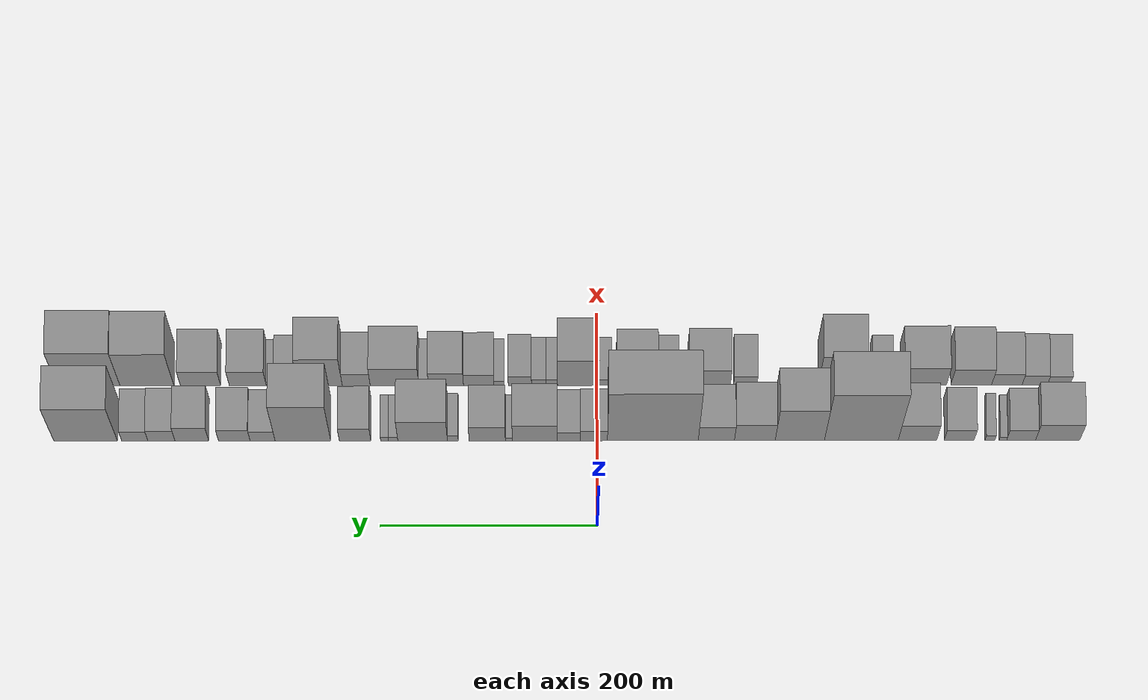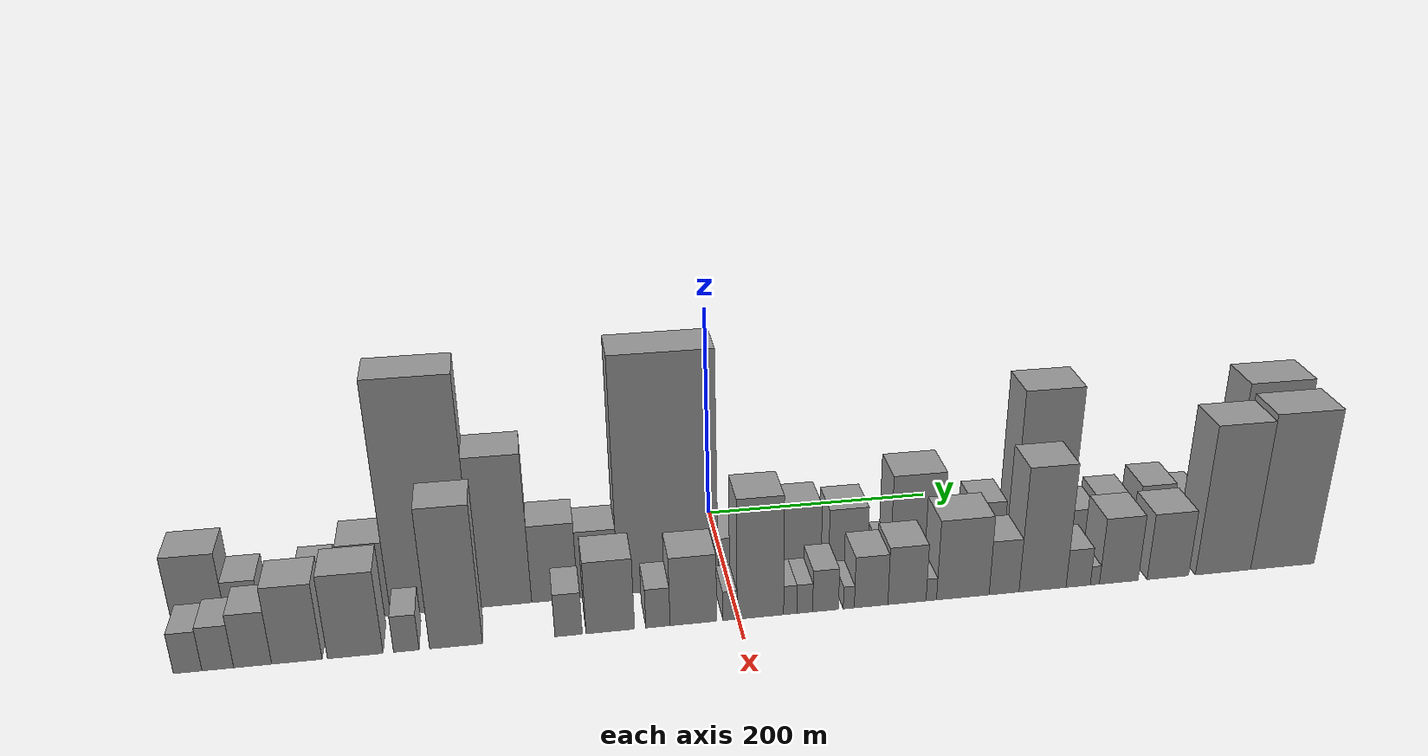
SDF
<sdf version="1.6">
 <world name="default">
  <scene>
   <sky><clouds><speed>12</speed></clouds></sky>
   <ambient>0.4 0.4 0.4 1</ambient>
   <background>0.7 0.7 0.7 1</background>
   <shadows>1</shadows>
  </scene>
  <gravity>0 0 -9.8066</gravity>
  <magnetic_field>6e-06 2.3e-05 -4.2e-05</magnetic_field>
  <physics default="0" name="default_physics" type="ode">
   <ode>
    <solver>
     <type>quick</type>
     <iters>10</iters>
     <sor>1.0</sor>
     <use_dynamic_moi_rescaling>0</use_dynamic_moi_rescaling>
    </solver>
    <constraints>
     <cfm>0</cfm>
     <erp>0.2</erp>
     <contact_max_correcting_vel>100</contact_max_correcting_vel>
     <contact_surface_layer>0.001</contact_surface_layer>
    </constraints>
   </ode>
   <max_step_size>0.004</max_step_size>
   <real_time_factor>1</real_time_factor>
   <real_time_update_rate>250</real_time_update_rate>
  </physics>
  <light name="sun" type="directional">
   <pose>0 0 10 0 0 0</pose>
   <diffuse>0.8 0.8 0.8 1</diffuse>
   <specular>0.2 0.2 0.2 1</specular>
   <attenuation>
    <range>1000</range>
    <constant>0.9</constant>
    <linear>0.01</linear>
    <quadratic>0.001</quadratic>
   </attenuation>
   <direction>-0.5 0.1 -0.9</direction>
  </light>
  <model name="building_1">
   <static>1</static>
   <pose>100.0000 -423.6033 0 0.000000 0.000000 0.000000</pose>
   <link name="link">
    <pose>0 0 36.00 0 0 0</pose>
    <collision name="collision"><geometry><box><size>40.0000 40.7935 72.0000</size></box></geometry></collision>
    <visual name="visual">
     <cast_shadows>0</cast_shadows>
     <geometry><box><size>40.0000 40.7935 72.0000</size></box></geometry>
     <material>
      <script>
       <uri>model://grey_wall/materials/scripts</uri>
       <uri>model://grey_wall/materials/textures</uri>
       <name>vrc/grey_wall</name>
      </script>
     </material>
    </visual>
   </link>
  </model>
  <model name="building_2">
   <static>1</static>
   <pose>100.0000 -389.9146 0 0.000000 0.000000 0.000000</pose>
   <link name="link">
    <pose>0 0 22.50 0 0 0</pose>
    <collision name="collision"><geometry><box><size>40.0000 26.5837 45.0000</size></box></geometry></collision>
    <visual name="visual">
     <cast_shadows>0</cast_shadows>
     <geometry><box><size>40.0000 26.5837 45.0000</size></box></geometry>
     <material>
      <script>
       <uri>model://grey_wall/materials/scripts</uri>
       <uri>model://grey_wall/materials/textures</uri>
       <name>vrc/grey_wall</name>
      </script>
     </material>
    </visual>
   </link>
  </model>
  <model name="building_3">
   <static>1</static>
   <pose>100.0000 -373.2220 0 0.000000 0.000000 0.000000</pose>
   <link name="link">
    <pose>0 0 7.50 0 0 0</pose>
    <collision name="collision"><geometry><box><size>40.0000 6.8015 15.0000</size></box></geometry></collision>
    <visual name="visual">
     <cast_shadows>0</cast_shadows>
     <geometry><box><size>40.0000 6.8015 15.0000</size></box></geometry>
     <material>
      <script>
       <uri>model://grey_wall/materials/scripts</uri>
       <uri>model://grey_wall/materials/textures</uri>
       <name>vrc/grey_wall</name>
      </script>
     </material>
    </visual>
   </link>
  </model>
  <model name="building_4">
   <static>1</static>
   <pose>100.0000 -361.2517 0 0.000000 0.000000 0.000000</pose>
   <link name="link">
    <pose>0 0 10.50 0 0 0</pose>
    <collision name="collision"><geometry><box><size>40.0000 9.1390 21.0000</size></box></geometry></collision>
    <visual name="visual">
     <cast_shadows>0</cast_shadows>
     <geometry><box><size>40.0000 9.1390 21.0000</size></box></geometry>
     <material>
      <script>
       <uri>model://grey_wall/materials/scripts</uri>
       <uri>model://grey_wall/materials/textures</uri>
       <name>vrc/grey_wall</name>
      </script>
     </material>
    </visual>
   </link>
  </model>
  <model name="building_5">
   <static>1</static>
   <pose>100.0000 -332.9344 0 0.000000 0.000000 0.000000</pose>
   <link name="link">
    <pose>0 0 24.00 0 0 0</pose>
    <collision name="collision"><geometry><box><size>40.0000 27.4955 48.0000</size></box></geometry></collision>
    <visual name="visual">
     <cast_shadows>0</cast_shadows>
     <geometry><box><size>40.0000 27.4955 48.0000</size></box></geometry>
     <material>
      <script>
       <uri>model://grey_wall/materials/scripts</uri>
       <uri>model://grey_wall/materials/textures</uri>
       <name>vrc/grey_wall</name>
      </script>
     </material>
    </visual>
   </link>
  </model>
  <model name="building_6">
   <static>1</static>
   <pose>100.0000 -294.4255 0 0.000000 0.000000 0.000000</pose>
   <link name="link">
    <pose>0 0 34.50 0 0 0</pose>
    <collision name="collision"><geometry><box><size>40.0000 35.5225 69.0000</size></box></geometry></collision>
    <visual name="visual">
     <cast_shadows>0</cast_shadows>
     <geometry><box><size>40.0000 35.5225 69.0000</size></box></geometry>
     <material>
      <script>
       <uri>model://grey_wall/materials/scripts</uri>
       <uri>model://grey_wall/materials/textures</uri>
       <name>vrc/grey_wall</name>
      </script>
     </material>
    </visual>
   </link>
  </model>
  <model name="building_7">
   <static>1</static>
   <pose>100.0000 -242.6753 0 0.000000 0.000000 0.000000</pose>
   <link name="link">
    <pose>0 0 105.00 0 0 0</pose>
    <collision name="collision"><geometry><box><size>40.0000 67.9778 210.0000</size></box></geometry></collision>
    <visual name="visual">
     <cast_shadows>0</cast_shadows>
     <geometry><box><size>40.0000 67.9778 210.0000</size></box></geometry>
     <material>
      <script>
       <uri>model://grey_wall/materials/scripts</uri>
       <uri>model://grey_wall/materials/textures</uri>
       <name>vrc/grey_wall</name>
      </script>
     </material>
    </visual>
   </link>
  </model>
  <model name="building_8">
   <static>1</static>
   <pose>100.0000 -186.0510 0 0.000000 0.000000 0.000000</pose>
   <link name="link">
    <pose>0 0 69.00 0 0 0</pose>
    <collision name="collision"><geometry><box><size>40.0000 45.2709 138.0000</size></box></geometry></collision>
    <visual name="visual">
     <cast_shadows>0</cast_shadows>
     <geometry><box><size>40.0000 45.2709 138.0000</size></box></geometry>
     <material>
      <script>
       <uri>model://grey_wall/materials/scripts</uri>
       <uri>model://grey_wall/materials/textures</uri>
       <name>vrc/grey_wall</name>
      </script>
     </material>
    </visual>
   </link>
  </model>
  <model name="building_9">
   <static>1</static>
   <pose>100.0000 -144.6471 0 0.000000 0.000000 0.000000</pose>
   <link name="link">
    <pose>0 0 36.00 0 0 0</pose>
    <collision name="collision"><geometry><box><size>40.0000 37.5369 72.0000</size></box></geometry></collision>
    <visual name="visual">
     <cast_shadows>0</cast_shadows>
     <geometry><box><size>40.0000 37.5369 72.0000</size></box></geometry>
     <material>
      <script>
       <uri>model://grey_wall/materials/scripts</uri>
       <uri>model://grey_wall/materials/textures</uri>
       <name>vrc/grey_wall</name>
      </script>
     </material>
    </visual>
   </link>
  </model>
  <model name="building_10">
   <static>1</static>
   <pose>100.0000 -109.1980 0 0.000000 0.000000 0.000000</pose>
   <link name="link">
    <pose>0 0 31.50 0 0 0</pose>
    <collision name="collision"><geometry><box><size>40.0000 33.3611 63.0000</size></box></geometry></collision>
    <visual name="visual">
     <cast_shadows>0</cast_shadows>
     <geometry><box><size>40.0000 33.3611 63.0000</size></box></geometry>
     <material>
      <script>
       <uri>model://grey_wall/materials/scripts</uri>
       <uri>model://grey_wall/materials/textures</uri>
       <name>vrc/grey_wall</name>
      </script>
     </material>
    </visual>
   </link>
  </model>
  <model name="building_11">
   <static>1</static>
   <pose>100.0000 -50.6891 0 0.000000 0.000000 0.000000</pose>
   <link name="link">
    <pose>0 0 108.00 0 0 0</pose>
    <collision name="collision"><geometry><box><size>40.0000 83.6567 216.0000</size></box></geometry></collision>
    <visual name="visual">
     <cast_shadows>0</cast_shadows>
     <geometry><box><size>40.0000 83.6567 216.0000</size></box></geometry>
     <material>
      <script>
       <uri>model://grey_wall/materials/scripts</uri>
       <uri>model://grey_wall/materials/textures</uri>
       <name>vrc/grey_wall</name>
      </script>
     </material>
    </visual>
   </link>
  </model>
  <model name="building_12">
   <static>1</static>
   <pose>100.0000 3.6721 0 0.000000 0.000000 0.000000</pose>
   <link name="link">
    <pose>0 0 22.50 0 0 0</pose>
    <collision name="collision"><geometry><box><size>40.0000 25.0657 45.0000</size></box></geometry></collision>
    <visual name="visual">
     <cast_shadows>0</cast_shadows>
     <geometry><box><size>40.0000 25.0657 45.0000</size></box></geometry>
     <material>
      <script>
       <uri>model://grey_wall/materials/scripts</uri>
       <uri>model://grey_wall/materials/textures</uri>
       <name>vrc/grey_wall</name>
      </script>
     </material>
    </visual>
   </link>
  </model>
  <model name="building_13">
   <static>1</static>
   <pose>100.0000 26.7743 0 0.000000 0.000000 0.000000</pose>
   <link name="link">
    <pose>0 0 19.50 0 0 0</pose>
    <collision name="collision"><geometry><box><size>40.0000 21.1387 39.0000</size></box></geometry></collision>
    <visual name="visual">
     <cast_shadows>0</cast_shadows>
     <geometry><box><size>40.0000 21.1387 39.0000</size></box></geometry>
     <material>
      <script>
       <uri>model://grey_wall/materials/scripts</uri>
       <uri>model://grey_wall/materials/textures</uri>
       <name>vrc/grey_wall</name>
      </script>
     </material>
    </visual>
   </link>
  </model>
  <model name="building_14">
   <static>1</static>
   <pose>100.0000 57.9399 0 0.000000 0.000000 0.000000</pose>
   <link name="link">
    <pose>0 0 34.50 0 0 0</pose>
    <collision name="collision"><geometry><box><size>40.0000 41.1926 69.0000</size></box></geometry></collision>
    <visual name="visual">
     <cast_shadows>0</cast_shadows>
     <geometry><box><size>40.0000 41.1926 69.0000</size></box></geometry>
     <material>
      <script>
       <uri>model://grey_wall/materials/scripts</uri>
       <uri>model://grey_wall/materials/textures</uri>
       <name>vrc/grey_wall</name>
      </script>
     </material>
    </visual>
   </link>
  </model>
  <model name="building_15">
   <static>1</static>
   <pose>100.0000 81.8253 0 0.000000 0.000000 0.000000</pose>
   <link name="link">
    <pose>0 0 7.50 0 0 0</pose>
    <collision name="collision"><geometry><box><size>40.0000 6.5783 15.0000</size></box></geometry></collision>
    <visual name="visual">
     <cast_shadows>0</cast_shadows>
     <geometry><box><size>40.0000 6.5783 15.0000</size></box></geometry>
     <material>
      <script>
       <uri>model://grey_wall/materials/scripts</uri>
       <uri>model://grey_wall/materials/textures</uri>
       <name>vrc/grey_wall</name>
      </script>
     </material>
    </visual>
   </link>
  </model>
  <model name="building_16">
   <static>1</static>
   <pose>100.0000 101.7952 0 0.000000 0.000000 0.000000</pose>
   <link name="link">
    <pose>0 0 31.50 0 0 0</pose>
    <collision name="collision"><geometry><box><size>40.0000 33.3615 63.0000</size></box></geometry></collision>
    <visual name="visual">
     <cast_shadows>0</cast_shadows>
     <geometry><box><size>40.0000 33.3615 63.0000</size></box></geometry>
     <material>
      <script>
       <uri>model://grey_wall/materials/scripts</uri>
       <uri>model://grey_wall/materials/textures</uri>
       <name>vrc/grey_wall</name>
      </script>
     </material>
    </visual>
   </link>
  </model>
  <model name="building_17">
   <static>1</static>
   <pose>100.0000 133.4512 0 0.000000 0.000000 0.000000</pose>
   <link name="link">
    <pose>0 0 12.00 0 0 0</pose>
    <collision name="collision"><geometry><box><size>40.0000 9.9504 24.0000</size></box></geometry></collision>
    <visual name="visual">
     <cast_shadows>0</cast_shadows>
     <geometry><box><size>40.0000 9.9504 24.0000</size></box></geometry>
     <material>
      <script>
       <uri>model://grey_wall/materials/scripts</uri>
       <uri>model://grey_wall/materials/textures</uri>
       <name>vrc/grey_wall</name>
      </script>
     </material>
    </visual>
   </link>
  </model>
  <model name="building_18">
   <static>1</static>
   <pose>100.0000 161.2609 0 0.000000 0.000000 0.000000</pose>
   <link name="link">
    <pose>0 0 45.00 0 0 0</pose>
    <collision name="collision"><geometry><box><size>40.0000 45.6691 90.0000</size></box></geometry></collision>
    <visual name="visual">
     <cast_shadows>0</cast_shadows>
     <geometry><box><size>40.0000 45.6691 90.0000</size></box></geometry>
     <material>
      <script>
       <uri>model://grey_wall/materials/scripts</uri>
       <uri>model://grey_wall/materials/textures</uri>
       <name>vrc/grey_wall</name>
      </script>
     </material>
    </visual>
   </link>
  </model>
  <model name="building_19">
   <static>1</static>
   <pose>100.0000 188.3970 0 0.000000 0.000000 0.000000</pose>
   <link name="link">
    <pose>0 0 9.00 0 0 0</pose>
    <collision name="collision"><geometry><box><size>40.0000 8.6031 18.0000</size></box></geometry></collision>
    <visual name="visual">
     <cast_shadows>0</cast_shadows>
     <geometry><box><size>40.0000 8.6031 18.0000</size></box></geometry>
     <material>
      <script>
       <uri>model://grey_wall/materials/scripts</uri>
       <uri>model://grey_wall/materials/textures</uri>
       <name>vrc/grey_wall</name>
      </script>
     </material>
    </visual>
   </link>
  </model>
  <model name="building_20">
   <static>1</static>
   <pose>100.0000 196.3335 0 0.000000 0.000000 0.000000</pose>
   <link name="link">
    <pose>0 0 9.00 0 0 0</pose>
    <collision name="collision"><geometry><box><size>40.0000 7.2699 18.0000</size></box></geometry></collision>
    <visual name="visual">
     <cast_shadows>0</cast_shadows>
     <geometry><box><size>40.0000 7.2699 18.0000</size></box></geometry>
     <material>
      <script>
       <uri>model://grey_wall/materials/scripts</uri>
       <uri>model://grey_wall/materials/textures</uri>
       <name>vrc/grey_wall</name>
      </script>
     </material>
    </visual>
   </link>
  </model>
  <model name="building_21">
   <static>1</static>
   <pose>100.0000 223.4659 0 0.000000 0.000000 0.000000</pose>
   <link name="link">
    <pose>0 0 28.50 0 0 0</pose>
    <collision name="collision"><geometry><box><size>40.0000 28.9950 57.0000</size></box></geometry></collision>
    <visual name="visual">
     <cast_shadows>0</cast_shadows>
     <geometry><box><size>40.0000 28.9950 57.0000</size></box></geometry>
     <material>
      <script>
       <uri>model://grey_wall/materials/scripts</uri>
       <uri>model://grey_wall/materials/textures</uri>
       <name>vrc/grey_wall</name>
      </script>
     </material>
    </visual>
   </link>
  </model>
  <model name="building_22">
   <static>1</static>
   <pose>100.0000 271.5565 0 0.000000 0.000000 0.000000</pose>
   <link name="link">
    <pose>0 0 79.50 0 0 0</pose>
    <collision name="collision"><geometry><box><size>40.0000 51.1862 159.0000</size></box></geometry></collision>
    <visual name="visual">
     <cast_shadows>0</cast_shadows>
     <geometry><box><size>40.0000 51.1862 159.0000</size></box></geometry>
     <material>
      <script>
       <uri>model://grey_wall/materials/scripts</uri>
       <uri>model://grey_wall/materials/textures</uri>
       <name>vrc/grey_wall</name>
      </script>
     </material>
    </visual>
   </link>
  </model>
  <model name="building_23">
   <static>1</static>
   <pose>100.0000 308.6644 0 0.000000 0.000000 0.000000</pose>
   <link name="link">
    <pose>0 0 21.00 0 0 0</pose>
    <collision name="collision"><geometry><box><size>40.0000 23.0295 42.0000</size></box></geometry></collision>
    <visual name="visual">
     <cast_shadows>0</cast_shadows>
     <geometry><box><size>40.0000 23.0295 42.0000</size></box></geometry>
     <material>
      <script>
       <uri>model://grey_wall/materials/scripts</uri>
       <uri>model://grey_wall/materials/textures</uri>
       <name>vrc/grey_wall</name>
      </script>
     </material>
    </visual>
   </link>
  </model>
  <model name="building_24">
   <static>1</static>
   <pose>100.0000 334.7351 0 0.000000 0.000000 0.000000</pose>
   <link name="link">
    <pose>0 0 25.50 0 0 0</pose>
    <collision name="collision"><geometry><box><size>40.0000 29.1119 51.0000</size></box></geometry></collision>
    <visual name="visual">
     <cast_shadows>0</cast_shadows>
     <geometry><box><size>40.0000 29.1119 51.0000</size></box></geometry>
     <material>
      <script>
       <uri>model://grey_wall/materials/scripts</uri>
       <uri>model://grey_wall/materials/textures</uri>
       <name>vrc/grey_wall</name>
      </script>
     </material>
    </visual>
   </link>
  </model>
  <model name="building_25">
   <static>1</static>
   <pose>100.0000 373.7782 0 0.000000 0.000000 0.000000</pose>
   <link name="link">
    <pose>0 0 30.00 0 0 0</pose>
    <collision name="collision"><geometry><box><size>40.0000 30.9744 60.0000</size></box></geometry></collision>
    <visual name="visual">
     <cast_shadows>0</cast_shadows>
     <geometry><box><size>40.0000 30.9744 60.0000</size></box></geometry>
     <material>
      <script>
       <uri>model://grey_wall/materials/scripts</uri>
       <uri>model://grey_wall/materials/textures</uri>
       <name>vrc/grey_wall</name>
      </script>
     </material>
    </visual>
   </link>
  </model>
  <model name="building_26">
   <static>1</static>
   <pose>100.0000 401.7312 0 0.000000 0.000000 0.000000</pose>
   <link name="link">
    <pose>0 0 24.00 0 0 0</pose>
    <collision name="collision"><geometry><box><size>40.0000 24.9315 48.0000</size></box></geometry></collision>
    <visual name="visual">
     <cast_shadows>0</cast_shadows>
     <geometry><box><size>40.0000 24.9315 48.0000</size></box></geometry>
     <material>
      <script>
       <uri>model://grey_wall/materials/scripts</uri>
       <uri>model://grey_wall/materials/textures</uri>
       <name>vrc/grey_wall</name>
      </script>
     </material>
    </visual>
   </link>
  </model>
  <model name="building_27">
   <static>1</static>
   <pose>100.0000 426.2417 0 0.000000 0.000000 0.000000</pose>
   <link name="link">
    <pose>0 0 22.50 0 0 0</pose>
    <collision name="collision"><geometry><box><size>40.0000 24.0894 45.0000</size></box></geometry></collision>
    <visual name="visual">
     <cast_shadows>0</cast_shadows>
     <geometry><box><size>40.0000 24.0894 45.0000</size></box></geometry>
     <material>
      <script>
       <uri>model://grey_wall/materials/scripts</uri>
       <uri>model://grey_wall/materials/textures</uri>
       <name>vrc/grey_wall</name>
      </script>
     </material>
    </visual>
   </link>
  </model>
  <model name="building_28">
   <static>1</static>
   <pose>100.0000 471.5539 0 0.000000 0.000000 0.000000</pose>
   <link name="link">
    <pose>0 0 75.00 0 0 0</pose>
    <collision name="collision"><geometry><box><size>40.0000 58.5350 150.0000</size></box></geometry></collision>
    <visual name="visual">
     <cast_shadows>0</cast_shadows>
     <geometry><box><size>40.0000 58.5350 150.0000</size></box></geometry>
     <material>
      <script>
       <uri>model://grey_wall/materials/scripts</uri>
       <uri>model://grey_wall/materials/textures</uri>
       <name>vrc/grey_wall</name>
      </script>
     </material>
    </visual>
   </link>
  </model>
  <model name="building_29">
   <static>1</static>
   <pose>152.0000 -425.5179 0 0.000000 0.000000 0.000000</pose>
   <link name="link">
    <pose>0 0 18.00 0 0 0</pose>
    <collision name="collision"><geometry><box><size>40.0000 20.9642 36.0000</size></box></geometry></collision>
    <visual name="visual">
     <cast_shadows>0</cast_shadows>
     <geometry><box><size>40.0000 20.9642 36.0000</size></box></geometry>
     <material>
      <script>
       <uri>model://grey_wall/materials/scripts</uri>
       <uri>model://grey_wall/materials/textures</uri>
       <name>vrc/grey_wall</name>
      </script>
     </material>
    </visual>
   </link>
  </model>
  <model name="building_30">
   <static>1</static>
   <pose>152.0000 -403.3746 0 0.000000 0.000000 0.000000</pose>
   <link name="link">
    <pose>0 0 19.50 0 0 0</pose>
    <collision name="collision"><geometry><box><size>40.0000 23.3224 39.0000</size></box></geometry></collision>
    <visual name="visual">
     <cast_shadows>0</cast_shadows>
     <geometry><box><size>40.0000 23.3224 39.0000</size></box></geometry>
     <material>
      <script>
       <uri>model://grey_wall/materials/scripts</uri>
       <uri>model://grey_wall/materials/textures</uri>
       <name>vrc/grey_wall</name>
      </script>
     </material>
    </visual>
   </link>
  </model>
  <model name="building_31">
   <static>1</static>
   <pose>152.0000 -377.6335 0 0.000000 0.000000 0.000000</pose>
   <link name="link">
    <pose>0 0 24.00 0 0 0</pose>
    <collision name="collision"><geometry><box><size>40.0000 28.1599 48.0000</size></box></geometry></collision>
    <visual name="visual">
     <cast_shadows>0</cast_shadows>
     <geometry><box><size>40.0000 28.1599 48.0000</size></box></geometry>
     <material>
      <script>
       <uri>model://grey_wall/materials/scripts</uri>
       <uri>model://grey_wall/materials/textures</uri>
       <name>vrc/grey_wall</name>
      </script>
     </material>
    </visual>
   </link>
  </model>
  <model name="building_32">
   <static>1</static>
   <pose>152.0000 -344.7179 0 0.000000 0.000000 0.000000</pose>
   <link name="link">
    <pose>0 0 34.50 0 0 0</pose>
    <collision name="collision"><geometry><box><size>40.0000 37.6713 69.0000</size></box></geometry></collision>
    <visual name="visual">
     <cast_shadows>0</cast_shadows>
     <geometry><box><size>40.0000 37.6713 69.0000</size></box></geometry>
     <material>
      <script>
       <uri>model://grey_wall/materials/scripts</uri>
       <uri>model://grey_wall/materials/textures</uri>
       <name>vrc/grey_wall</name>
      </script>
     </material>
    </visual>
   </link>
  </model>
  <model name="building_33">
   <static>1</static>
   <pose>152.0000 -300.8493 0 0.000000 0.000000 0.000000</pose>
   <link name="link">
    <pose>0 0 37.50 0 0 0</pose>
    <collision name="collision"><geometry><box><size>40.0000 42.0658 75.0000</size></box></geometry></collision>
    <visual name="visual">
     <cast_shadows>0</cast_shadows>
     <geometry><box><size>40.0000 42.0658 75.0000</size></box></geometry>
     <material>
      <script>
       <uri>model://grey_wall/materials/scripts</uri>
       <uri>model://grey_wall/materials/textures</uri>
       <name>vrc/grey_wall</name>
      </script>
     </material>
    </visual>
   </link>
  </model>
  <model name="building_34">
   <static>1</static>
   <pose>152.0000 -262.0628 0 0.000000 0.000000 0.000000</pose>
   <link name="link">
    <pose>0 0 16.50 0 0 0</pose>
    <collision name="collision"><geometry><box><size>40.0000 19.5072 33.0000</size></box></geometry></collision>
    <visual name="visual">
     <cast_shadows>0</cast_shadows>
     <geometry><box><size>40.0000 19.5072 33.0000</size></box></geometry>
     <material>
      <script>
       <uri>model://grey_wall/materials/scripts</uri>
       <uri>model://grey_wall/materials/textures</uri>
       <name>vrc/grey_wall</name>
      </script>
     </material>
    </visual>
   </link>
  </model>
  <model name="building_35">
   <static>1</static>
   <pose>152.0000 -223.9092 0 0.000000 0.000000 0.000000</pose>
   <link name="link">
    <pose>0 0 63.00 0 0 0</pose>
    <collision name="collision"><geometry><box><size>40.0000 40.8000 126.0000</size></box></geometry></collision>
    <visual name="visual">
     <cast_shadows>0</cast_shadows>
     <geometry><box><size>40.0000 40.8000 126.0000</size></box></geometry>
     <material>
      <script>
       <uri>model://grey_wall/materials/scripts</uri>
       <uri>model://grey_wall/materials/textures</uri>
       <name>vrc/grey_wall</name>
      </script>
     </material>
    </visual>
   </link>
  </model>
  <model name="building_36">
   <static>1</static>
   <pose>152.0000 -136.1478 0 0.000000 0.000000 0.000000</pose>
   <link name="link">
    <pose>0 0 19.50 0 0 0</pose>
    <collision name="collision"><geometry><box><size>40.0000 21.5742 39.0000</size></box></geometry></collision>
    <visual name="visual">
     <cast_shadows>0</cast_shadows>
     <geometry><box><size>40.0000 21.5742 39.0000</size></box></geometry>
     <material>
      <script>
       <uri>model://grey_wall/materials/scripts</uri>
       <uri>model://grey_wall/materials/textures</uri>
       <name>vrc/grey_wall</name>
      </script>
     </material>
    </visual>
   </link>
  </model>
  <model name="building_37">
   <static>1</static>
   <pose>152.0000 -103.0731 0 0.000000 0.000000 0.000000</pose>
   <link name="link">
    <pose>0 0 33.00 0 0 0</pose>
    <collision name="collision"><geometry><box><size>40.0000 38.5752 66.0000</size></box></geometry></collision>
    <visual name="visual">
     <cast_shadows>0</cast_shadows>
     <geometry><box><size>40.0000 38.5752 66.0000</size></box></geometry>
     <material>
      <script>
       <uri>model://grey_wall/materials/scripts</uri>
       <uri>model://grey_wall/materials/textures</uri>
       <name>vrc/grey_wall</name>
      </script>
     </material>
    </visual>
   </link>
  </model>
  <model name="building_38">
   <static>1</static>
   <pose>152.0000 -65.0362 0 0.000000 0.000000 0.000000</pose>
   <link name="link">
    <pose>0 0 18.00 0 0 0</pose>
    <collision name="collision"><geometry><box><size>40.0000 19.4987 36.0000</size></box></geometry></collision>
    <visual name="visual">
     <cast_shadows>0</cast_shadows>
     <geometry><box><size>40.0000 19.4987 36.0000</size></box></geometry>
     <material>
      <script>
       <uri>model://grey_wall/materials/scripts</uri>
       <uri>model://grey_wall/materials/textures</uri>
       <name>vrc/grey_wall</name>
      </script>
     </material>
    </visual>
   </link>
  </model>
  <model name="building_39">
   <static>1</static>
   <pose>152.0000 -36.4126 0 0.000000 0.000000 0.000000</pose>
   <link name="link">
    <pose>0 0 31.50 0 0 0</pose>
    <collision name="collision"><geometry><box><size>40.0000 37.7484 63.0000</size></box></geometry></collision>
    <visual name="visual">
     <cast_shadows>0</cast_shadows>
     <geometry><box><size>40.0000 37.7484 63.0000</size></box></geometry>
     <material>
      <script>
       <uri>model://grey_wall/materials/scripts</uri>
       <uri>model://grey_wall/materials/textures</uri>
       <name>vrc/grey_wall</name>
      </script>
     </material>
    </visual>
   </link>
  </model>
  <model name="building_40">
   <static>1</static>
   <pose>152.0000 -6.7665 0 0.000000 0.000000 0.000000</pose>
   <link name="link">
    <pose>0 0 13.50 0 0 0</pose>
    <collision name="collision"><geometry><box><size>40.0000 11.5437 27.0000</size></box></geometry></collision>
    <visual name="visual">
     <cast_shadows>0</cast_shadows>
     <geometry><box><size>40.0000 11.5437 27.0000</size></box></geometry>
     <material>
      <script>
       <uri>model://grey_wall/materials/scripts</uri>
       <uri>model://grey_wall/materials/textures</uri>
       <name>vrc/grey_wall</name>
      </script>
     </material>
    </visual>
   </link>
  </model>
  <model name="building_41">
   <static>1</static>
   <pose>152.0000 18.0178 0 0.000000 0.000000 0.000000</pose>
   <link name="link">
    <pose>0 0 55.50 0 0 0</pose>
    <collision name="collision"><geometry><box><size>40.0000 38.0251 111.0000</size></box></geometry></collision>
    <visual name="visual">
     <cast_shadows>0</cast_shadows>
     <geometry><box><size>40.0000 38.0251 111.0000</size></box></geometry>
     <material>
      <script>
       <uri>model://grey_wall/materials/scripts</uri>
       <uri>model://grey_wall/materials/textures</uri>
       <name>vrc/grey_wall</name>
      </script>
     </material>
    </visual>
   </link>
  </model>
  <model name="building_42">
   <static>1</static>
   <pose>152.0000 42.4519 0 0.000000 0.000000 0.000000</pose>
   <link name="link">
    <pose>0 0 13.50 0 0 0</pose>
    <collision name="collision"><geometry><box><size>40.0000 10.8431 27.0000</size></box></geometry></collision>
    <visual name="visual">
     <cast_shadows>0</cast_shadows>
     <geometry><box><size>40.0000 10.8431 27.0000</size></box></geometry>
     <material>
      <script>
       <uri>model://grey_wall/materials/scripts</uri>
       <uri>model://grey_wall/materials/textures</uri>
       <name>vrc/grey_wall</name>
      </script>
     </material>
    </visual>
   </link>
  </model>
  <model name="building_43">
   <static>1</static>
   <pose>152.0000 54.4612 0 0.000000 0.000000 0.000000</pose>
   <link name="link">
    <pose>0 0 13.50 0 0 0</pose>
    <collision name="collision"><geometry><box><size>40.0000 13.1754 27.0000</size></box></geometry></collision>
    <visual name="visual">
     <cast_shadows>0</cast_shadows>
     <geometry><box><size>40.0000 13.1754 27.0000</size></box></geometry>
     <material>
      <script>
       <uri>model://grey_wall/materials/scripts</uri>
       <uri>model://grey_wall/materials/textures</uri>
       <name>vrc/grey_wall</name>
      </script>
     </material>
    </visual>
   </link>
  </model>
  <model name="building_44">
   <static>1</static>
   <pose>152.0000 71.7530 0 0.000000 0.000000 0.000000</pose>
   <link name="link">
    <pose>0 0 19.50 0 0 0</pose>
    <collision name="collision"><geometry><box><size>40.0000 21.4082 39.0000</size></box></geometry></collision>
    <visual name="visual">
     <cast_shadows>0</cast_shadows>
     <geometry><box><size>40.0000 21.4082 39.0000</size></box></geometry>
     <material>
      <script>
       <uri>model://grey_wall/materials/scripts</uri>
       <uri>model://grey_wall/materials/textures</uri>
       <name>vrc/grey_wall</name>
      </script>
     </material>
    </visual>
   </link>
  </model>
  <model name="building_45">
   <static>1</static>
   <pose>152.0000 91.0730 0 0.000000 0.000000 0.000000</pose>
   <link name="link">
    <pose>0 0 10.50 0 0 0</pose>
    <collision name="collision"><geometry><box><size>40.0000 9.2319 21.0000</size></box></geometry></collision>
    <visual name="visual">
     <cast_shadows>0</cast_shadows>
     <geometry><box><size>40.0000 9.2319 21.0000</size></box></geometry>
     <material>
      <script>
       <uri>model://grey_wall/materials/scripts</uri>
       <uri>model://grey_wall/materials/textures</uri>
       <name>vrc/grey_wall</name>
      </script>
     </material>
    </visual>
   </link>
  </model>
  <model name="building_46">
   <static>1</static>
   <pose>152.0000 109.7430 0 0.000000 0.000000 0.000000</pose>
   <link name="link">
    <pose>0 0 24.00 0 0 0</pose>
    <collision name="collision"><geometry><box><size>40.0000 28.1080 48.0000</size></box></geometry></collision>
    <visual name="visual">
     <cast_shadows>0</cast_shadows>
     <geometry><box><size>40.0000 28.1080 48.0000</size></box></geometry>
     <material>
      <script>
       <uri>model://grey_wall/materials/scripts</uri>
       <uri>model://grey_wall/materials/textures</uri>
       <name>vrc/grey_wall</name>
      </script>
     </material>
    </visual>
   </link>
  </model>
  <model name="building_47">
   <static>1</static>
   <pose>152.0000 139.9300 0 0.000000 0.000000 0.000000</pose>
   <link name="link">
    <pose>0 0 27.00 0 0 0</pose>
    <collision name="collision"><geometry><box><size>40.0000 32.2661 54.0000</size></box></geometry></collision>
    <visual name="visual">
     <cast_shadows>0</cast_shadows>
     <geometry><box><size>40.0000 32.2661 54.0000</size></box></geometry>
     <material>
      <script>
       <uri>model://grey_wall/materials/scripts</uri>
       <uri>model://grey_wall/materials/textures</uri>
       <name>vrc/grey_wall</name>
      </script>
     </material>
    </visual>
   </link>
  </model>
  <model name="building_48">
   <static>1</static>
   <pose>152.0000 160.5000 0 0.000000 0.000000 0.000000</pose>
   <link name="link">
    <pose>0 0 10.50 0 0 0</pose>
    <collision name="collision"><geometry><box><size>40.0000 8.8741 21.0000</size></box></geometry></collision>
    <visual name="visual">
     <cast_shadows>0</cast_shadows>
     <geometry><box><size>40.0000 8.8741 21.0000</size></box></geometry>
     <material>
      <script>
       <uri>model://grey_wall/materials/scripts</uri>
       <uri>model://grey_wall/materials/textures</uri>
       <name>vrc/grey_wall</name>
      </script>
     </material>
    </visual>
   </link>
  </model>
  <model name="building_49">
   <static>1</static>
   <pose>152.0000 187.3831 0 0.000000 0.000000 0.000000</pose>
   <link name="link">
    <pose>0 0 37.50 0 0 0</pose>
    <collision name="collision"><geometry><box><size>40.0000 44.8920 75.0000</size></box></geometry></collision>
    <visual name="visual">
     <cast_shadows>0</cast_shadows>
     <geometry><box><size>40.0000 44.8920 75.0000</size></box></geometry>
     <material>
      <script>
       <uri>model://grey_wall/materials/scripts</uri>
       <uri>model://grey_wall/materials/textures</uri>
       <name>vrc/grey_wall</name>
      </script>
     </material>
    </visual>
   </link>
  </model>
  <model name="building_50">
   <static>1</static>
   <pose>152.0000 222.7146 0 0.000000 0.000000 0.000000</pose>
   <link name="link">
    <pose>0 0 25.50 0 0 0</pose>
    <collision name="collision"><geometry><box><size>40.0000 25.7711 51.0000</size></box></geometry></collision>
    <visual name="visual">
     <cast_shadows>0</cast_shadows>
     <geometry><box><size>40.0000 25.7711 51.0000</size></box></geometry>
     <material>
      <script>
       <uri>model://grey_wall/materials/scripts</uri>
       <uri>model://grey_wall/materials/textures</uri>
       <name>vrc/grey_wall</name>
      </script>
     </material>
    </visual>
   </link>
  </model>
  <model name="building_51">
   <static>1</static>
   <pose>152.0000 256.0138 0 0.000000 0.000000 0.000000</pose>
   <link name="link">
    <pose>0 0 58.50 0 0 0</pose>
    <collision name="collision"><geometry><box><size>40.0000 40.8271 117.0000</size></box></geometry></collision>
    <visual name="visual">
     <cast_shadows>0</cast_shadows>
     <geometry><box><size>40.0000 40.8271 117.0000</size></box></geometry>
     <material>
      <script>
       <uri>model://grey_wall/materials/scripts</uri>
       <uri>model://grey_wall/materials/textures</uri>
       <name>vrc/grey_wall</name>
      </script>
     </material>
    </visual>
   </link>
  </model>
  <model name="building_52">
   <static>1</static>
   <pose>152.0000 287.0733 0 0.000000 0.000000 0.000000</pose>
   <link name="link">
    <pose>0 0 18.00 0 0 0</pose>
    <collision name="collision"><geometry><box><size>40.0000 21.2919 36.0000</size></box></geometry></collision>
    <visual name="visual">
     <cast_shadows>0</cast_shadows>
     <geometry><box><size>40.0000 21.2919 36.0000</size></box></geometry>
     <material>
      <script>
       <uri>model://grey_wall/materials/scripts</uri>
       <uri>model://grey_wall/materials/textures</uri>
       <name>vrc/grey_wall</name>
      </script>
     </material>
    </visual>
   </link>
  </model>
  <model name="building_53">
   <static>1</static>
   <pose>152.0000 301.6910 0 0.000000 0.000000 0.000000</pose>
   <link name="link">
    <pose>0 0 9.00 0 0 0</pose>
    <collision name="collision"><geometry><box><size>40.0000 7.9435 18.0000</size></box></geometry></collision>
    <visual name="visual">
     <cast_shadows>0</cast_shadows>
     <geometry><box><size>40.0000 7.9435 18.0000</size></box></geometry>
     <material>
      <script>
       <uri>model://grey_wall/materials/scripts</uri>
       <uri>model://grey_wall/materials/textures</uri>
       <name>vrc/grey_wall</name>
      </script>
     </material>
    </visual>
   </link>
  </model>
  <model name="building_54">
   <static>1</static>
   <pose>152.0000 322.7311 0 0.000000 0.000000 0.000000</pose>
   <link name="link">
    <pose>0 0 31.50 0 0 0</pose>
    <collision name="collision"><geometry><box><size>40.0000 34.1366 63.0000</size></box></geometry></collision>
    <visual name="visual">
     <cast_shadows>0</cast_shadows>
     <geometry><box><size>40.0000 34.1366 63.0000</size></box></geometry>
     <material>
      <script>
       <uri>model://grey_wall/materials/scripts</uri>
       <uri>model://grey_wall/materials/textures</uri>
       <name>vrc/grey_wall</name>
      </script>
     </material>
    </visual>
   </link>
  </model>
  <model name="building_55">
   <static>1</static>
   <pose>152.0000 366.3388 0 0.000000 0.000000 0.000000</pose>
   <link name="link">
    <pose>0 0 31.50 0 0 0</pose>
    <collision name="collision"><geometry><box><size>40.0000 37.0789 63.0000</size></box></geometry></collision>
    <visual name="visual">
     <cast_shadows>0</cast_shadows>
     <geometry><box><size>40.0000 37.0789 63.0000</size></box></geometry>
     <material>
      <script>
       <uri>model://grey_wall/materials/scripts</uri>
       <uri>model://grey_wall/materials/textures</uri>
       <name>vrc/grey_wall</name>
      </script>
     </material>
    </visual>
   </link>
  </model>
  <model name="building_56">
   <static>1</static>
   <pose>152.0000 415.7939 0 0.000000 0.000000 0.000000</pose>
   <link name="link">
    <pose>0 0 70.50 0 0 0</pose>
    <collision name="collision"><geometry><box><size>40.0000 49.8314 141.0000</size></box></geometry></collision>
    <visual name="visual">
     <cast_shadows>0</cast_shadows>
     <geometry><box><size>40.0000 49.8314 141.0000</size></box></geometry>
     <material>
      <script>
       <uri>model://grey_wall/materials/scripts</uri>
       <uri>model://grey_wall/materials/textures</uri>
       <name>vrc/grey_wall</name>
      </script>
     </material>
    </visual>
   </link>
  </model>
  <model name="building_57">
   <static>1</static>
   <pose>152.0000 469.6551 0 0.000000 0.000000 0.000000</pose>
   <link name="link">
    <pose>0 0 73.50 0 0 0</pose>
    <collision name="collision"><geometry><box><size>40.0000 57.8910 147.0000</size></box></geometry></collision>
    <visual name="visual">
     <cast_shadows>0</cast_shadows>
     <geometry><box><size>40.0000 57.8910 147.0000</size></box></geometry>
     <material>
      <script>
       <uri>model://grey_wall/materials/scripts</uri>
       <uri>model://grey_wall/materials/textures</uri>
       <name>vrc/grey_wall</name>
      </script>
     </material>
    </visual>
   </link>
  </model>
 </world>
</sdf>
